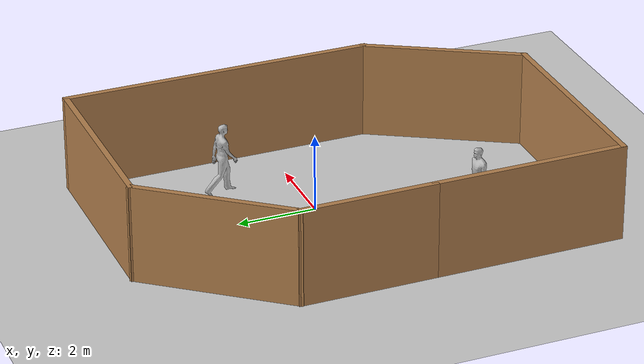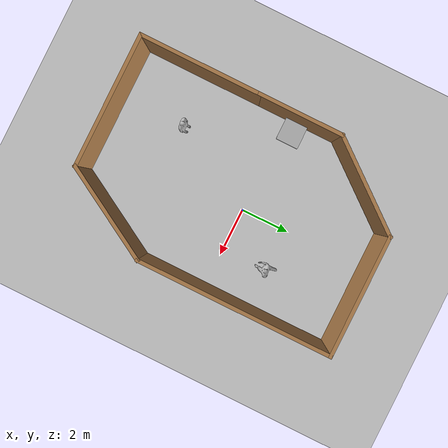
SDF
<sdf version="1.6">
 <world name="default">
  <light name="sun" type="directional">
   <pose>0 0 10 0 -0 0</pose>
   <diffuse>0.8 0.8 0.8 1</diffuse>
   <specular>0.2 0.2 0.2 1</specular>
   <attenuation>
    <range>1000</range>
    <constant>0.9</constant>
    <linear>0.01</linear>
    <quadratic>0.001</quadratic>
   </attenuation>
   <direction>-0.5 0.1 -0.9</direction>
  </light>
  <model name="ground_plane">
   <static>1</static>
   <link name="link">
    <collision name="collision">
     <geometry><plane><normal>0 0 1</normal><size>100 100</size></plane></geometry>
     <surface>
      <contact><collide_bitmask>65535</collide_bitmask></contact>
      <friction><ode><mu>100</mu><mu2>50</mu2></ode></friction>
     </surface>
    </collision>
    <visual name="visual">
     <cast_shadows>0</cast_shadows>
     <geometry><plane><normal>0 0 1</normal><size>100 100</size></plane></geometry>
     <material>
      <script><uri>file://media/materials/scripts/gazebo.material</uri><name>Gazebo/Grey</name></script>
     </material>
    </visual>
   </link>
  </model>
  <gravity>0 0 -9.8</gravity>
  <magnetic_field>6e-06 2.3e-05 -4.2e-05</magnetic_field>
  <atmosphere type="adiabatic"/>
  <physics name="default_physics" default="0" type="ode">
   <max_step_size>0.001</max_step_size>
   <real_time_factor>1</real_time_factor>
   <real_time_update_rate>1000</real_time_update_rate>
  </physics>
  <scene><ambient>0.4 0.4 0.4 1</ambient><background>0.7 0.7 0.7 1</background><shadows>1</shadows></scene>
  <audio><device>default</device></audio>
  <spherical_coordinates>
   <surface_model>EARTH_WGS84</surface_model>
   <latitude_deg>0</latitude_deg>
   <longitude_deg>0</longitude_deg>
   <elevation>0</elevation>
   <heading_deg>0</heading_deg>
  </spherical_coordinates>
  <model name="Untitled">
   <pose>-0.386008 -0.4941 0 0 -0 0</pose>
   <link name="Wall_0">
    <collision name="Wall_0_Collision">
     <geometry><box><size>3.5 0.15 2.5</size></box></geometry>
     <pose>0 0 1.25 0 -0 0</pose>
    </collision>
    <visual name="Wall_0_Visual">
     <pose>0 0 1.25 0 -0 0</pose>
     <geometry><box><size>3.5 0.15 2.5</size></box></geometry>
     <material>
      <script><uri>file://media/materials/scripts/gazebo.material</uri><name>Gazebo/Wood</name></script>
      <ambient>1 1 1 1</ambient>
     </material>
     <meta><layer>0</layer></meta>
    </visual>
    <pose>-3.69853 0.823177 0 0 -0 -1.5708</pose>
   </link>
   <link name="Wall_2">
    <collision name="Wall_2_Collision">
     <geometry><box><size>5 0.15 2.5</size></box></geometry>
     <pose>0 0 1.25 0 -0 0</pose>
    </collision>
    <visual name="Wall_2_Visual">
     <pose>0 0 1.25 0 -0 0</pose>
     <geometry><box><size>5 0.15 2.5</size></box></geometry>
     <material>
      <script><uri>file://media/materials/scripts/gazebo.material</uri><name>Gazebo/Wood</name></script>
      <ambient>1 1 1 1</ambient>
     </material>
     <meta><layer>0</layer></meta>
    </visual>
    <pose>-3.69853 -3.27682 0 0 -0 -1.5708</pose>
   </link>
   <link name="Wall_3">
    <collision name="Wall_3_Collision">
     <geometry><box><size>5.5 0.15 2.5</size></box></geometry>
     <pose>0 0 1.25 0 -0 0</pose>
    </collision>
    <visual name="Wall_3_Visual">
     <pose>0 0 1.25 0 -0 0</pose>
     <geometry><box><size>5.5 0.15 2.5</size></box></geometry>
     <material>
      <script><uri>file://media/materials/scripts/gazebo.material</uri><name>Gazebo/Wood</name></script>
      <ambient>1 1 1 1</ambient>
     </material>
     <meta><layer>0</layer></meta>
    </visual>
    <pose>-1.02353 -5.70182 0 0 -0 0</pose>
   </link>
   <link name="Wall_4">
    <collision name="Wall_4_Collision">
     <geometry><box><size>4.25 0.15 2.5</size></box></geometry>
     <pose>0 0 1.25 0 -0 0</pose>
    </collision>
    <visual name="Wall_4_Visual">
     <pose>0 0 1.25 0 -0 0</pose>
     <geometry><box><size>4.25 0.15 2.5</size></box></geometry>
     <material>
      <script><uri>file://media/materials/scripts/gazebo.material</uri><name>Gazebo/Wood</name></script>
      <ambient>1 1 1 1</ambient>
     </material>
     <meta><layer>0</layer></meta>
    </visual>
    <pose>2.67647 -3.92647 0 0 -0 1.0472</pose>
   </link>
   <link name="Wall_5">
    <collision name="Wall_5_Collision">
     <geometry><box><size>8 0.15 2.5</size></box></geometry>
     <pose>0 0 1.25 0 -0 0</pose>
    </collision>
    <visual name="Wall_5_Visual">
     <pose>0 0 1.25 0 -0 0</pose>
     <geometry><box><size>8 0.15 2.5</size></box></geometry>
     <material>
      <script><uri>file://media/materials/scripts/gazebo.material</uri><name>Gazebo/Wood</name></script>
      <ambient>1 1 1 1</ambient>
     </material>
     <meta><layer>0</layer></meta>
    </visual>
    <pose>3.70147 1.77388 0 0 -0 1.5708</pose>
   </link>
   <link name="Wall_6">
    <collision name="Wall_6_Collision">
     <geometry><box><size>5 0.15 2.5</size></box></geometry>
     <pose>0 0 1.25 0 -0 0</pose>
    </collision>
    <visual name="Wall_6_Visual">
     <pose>0 0 1.25 0 -0 0</pose>
     <geometry><box><size>5 0.15 2.5</size></box></geometry>
     <material>
      <script><uri>file://media/materials/scripts/gazebo.material</uri><name>Gazebo/Wood</name></script>
      <ambient>1 1 1 1</ambient>
     </material>
     <meta><layer>0</layer></meta>
    </visual>
    <pose>1.27647 5.69888 0 0 -0 3.14159</pose>
   </link>
   <link name="Wall_7">
    <collision name="Wall_7_Collision">
     <geometry><box><size>4.24231 0.15 2.5</size></box></geometry>
     <pose>0 0 1.25 0 -0 0</pose>
    </collision>
    <visual name="Wall_7_Visual">
     <pose>0 0 1.25 0 -0 0</pose>
     <geometry><box><size>4.24231 0.15 2.5</size></box></geometry>
     <material>
      <script><uri>file://media/materials/scripts/gazebo.material</uri><name>Gazebo/Wood</name></script>
      <ambient>1 1 1 1</ambient>
     </material>
     <meta><layer>0</layer></meta>
    </visual>
    <pose>-2.42353 4.09853 0 0 -0 -2.24352</pose>
   </link>
   <static>1</static>
  </model>
  <model name="person_standing">
   <link name="link">
    <inertial>
     <pose>0 -0.1 0.95 0 -0 0</pose>
     <mass>80</mass>
     <inertia><ixx>24.88</ixx><ixy>0</ixy><ixz>0</ixz><iyy>25.73</iyy><iyz>0</iyz><izz>2.48</izz></inertia>
    </inertial>
    <collision name="bottom">
     <pose>0 -0.1 0.01 0 -0 0</pose>
     <geometry><box><size>0.5 0.35 0.02</size></box></geometry>
    </collision>
    <collision name="person">
     <pose>0 0 0.02 0.04 -0 0</pose>
     <geometry><mesh><uri>model://person_standing/meshes/standing.dae</uri></mesh></geometry>
    </collision>
    <visual name="visual">
     <pose>0 0 0.02 0.04 -0 0</pose>
     <geometry><mesh><uri>model://person_standing/meshes/standing.dae</uri></mesh></geometry>
    </visual>
   </link>
   <pose>-1.89972 -3.57118 -0 -1e-06 1e-06 -3.11409</pose>
  </model>
  <model name="person_walking">
   <link name="link">
    <inertial>
     <pose>0 0 0.95 0 -0 0</pose>
     <mass>80</mass>
     <inertia><ixx>27.82</ixx><ixy>0</ixy><ixz>0</ixz><iyy>24.88</iyy><iyz>0</iyz><izz>4.57</izz></inertia>
    </inertial>
    <collision name="bottom">
     <pose>0 0 0.01 0 -0 0</pose>
     <geometry><box><size>0.35 0.75 0.02</size></box></geometry>
    </collision>
    <collision name="person">
     <pose>0 0 -0.02 0 -0 0</pose>
     <geometry><mesh><uri>model://person_walking/meshes/walking.dae</uri></mesh></geometry>
    </collision>
    <visual name="visual">
     <pose>0 0 -0.02 0 -0 0</pose>
     <geometry><mesh><uri>model://person_walking/meshes/walking.dae</uri></mesh></geometry>
    </visual>
   </link>
   <pose>1.65977 1.82194 -0 0 1e-06 0.000306</pose>
  </model>
  <model name="cafe_table">
   <static>1</static>
   <link name="link">
    <collision name="surface">
     <pose>0 0 0.755 0 -0 0</pose>
     <geometry><box><size>0.913 0.913 0.04</size></box></geometry>
    </collision>
    <collision name="column">
     <pose>0 0 0.37 0 -0 0</pose>
     <geometry><box><size>0.042 0.042 0.74</size></box></geometry>
    </collision>
    <collision name="base">
     <pose>0 0 0.02 0 -0 0</pose>
     <geometry><box><size>0.56 0.56 0.04</size></box></geometry>
    </collision>
    <visual name="visual">
     <geometry><mesh><uri>model://cafe_table/meshes/cafe_table.dae</uri></mesh></geometry>
    </visual>
   </link>
   <pose>-3.52853 0.378739 0 0 -0 0</pose>
  </model>
 </world>
</sdf>
